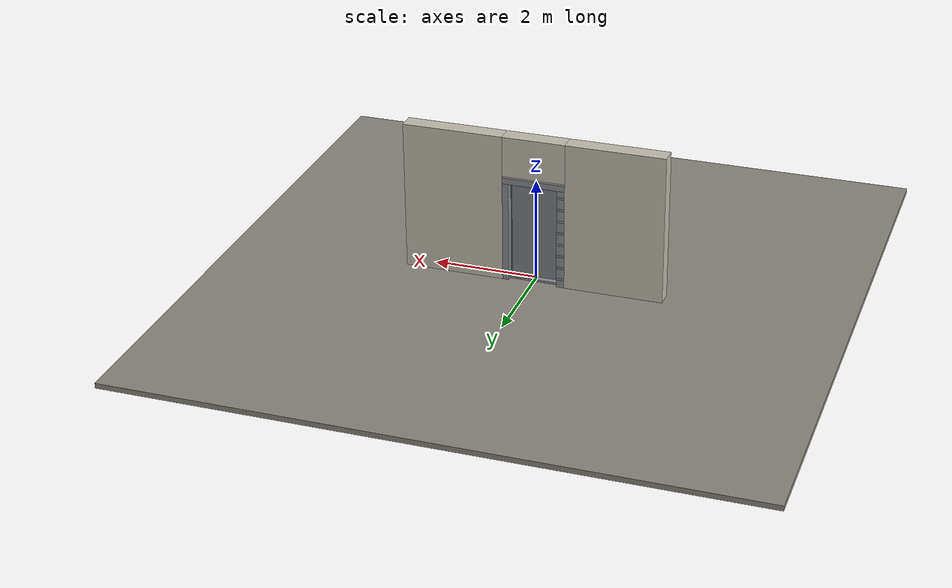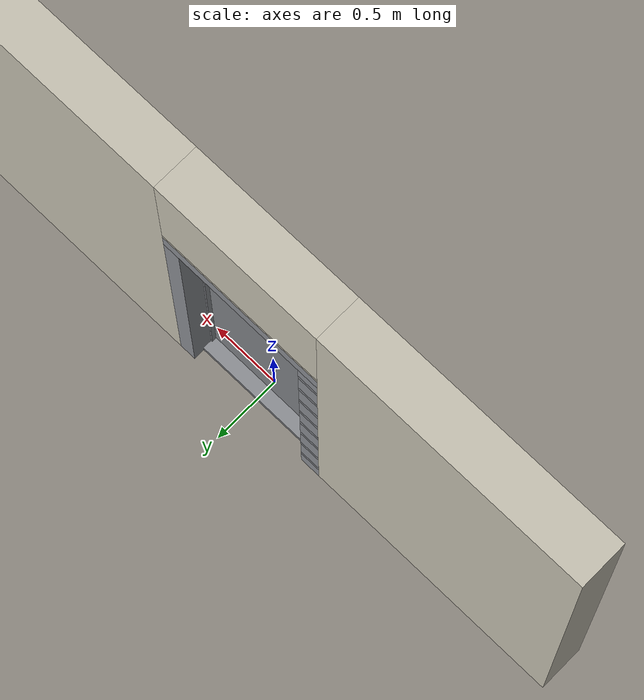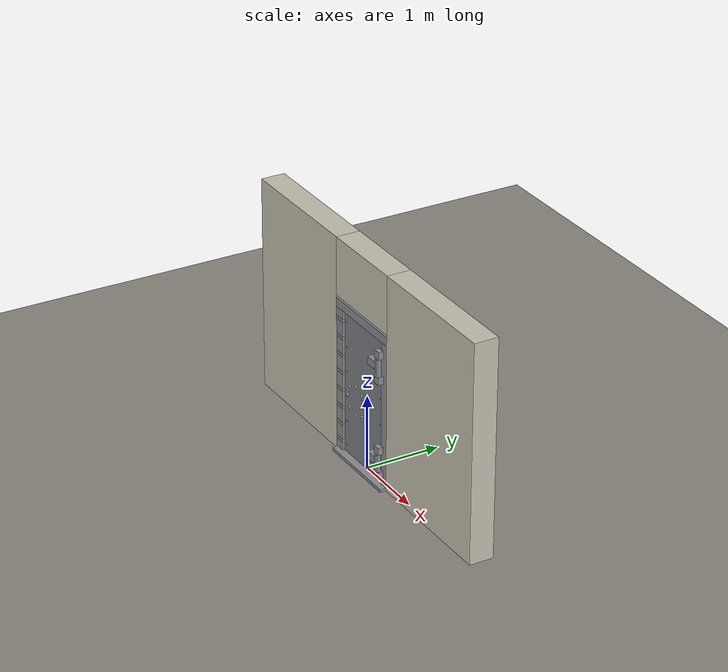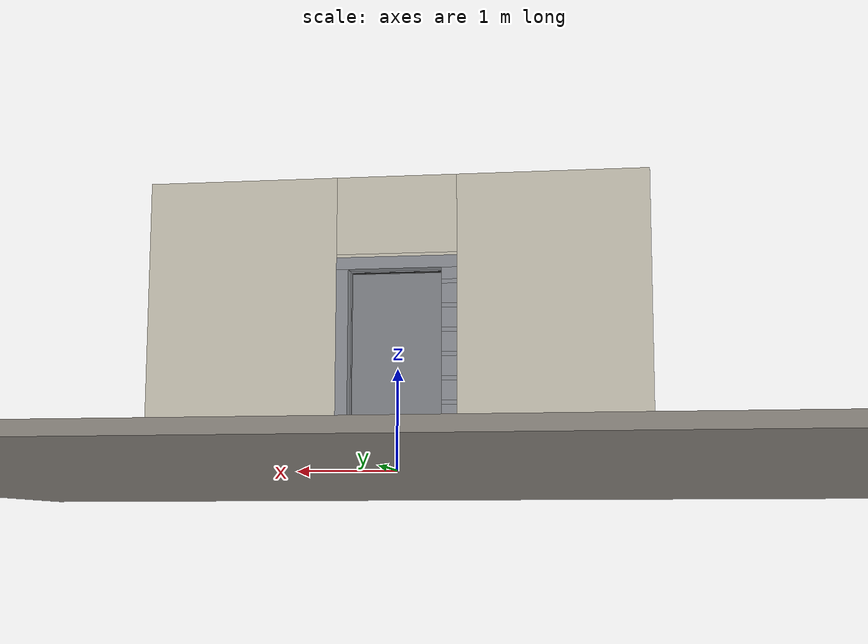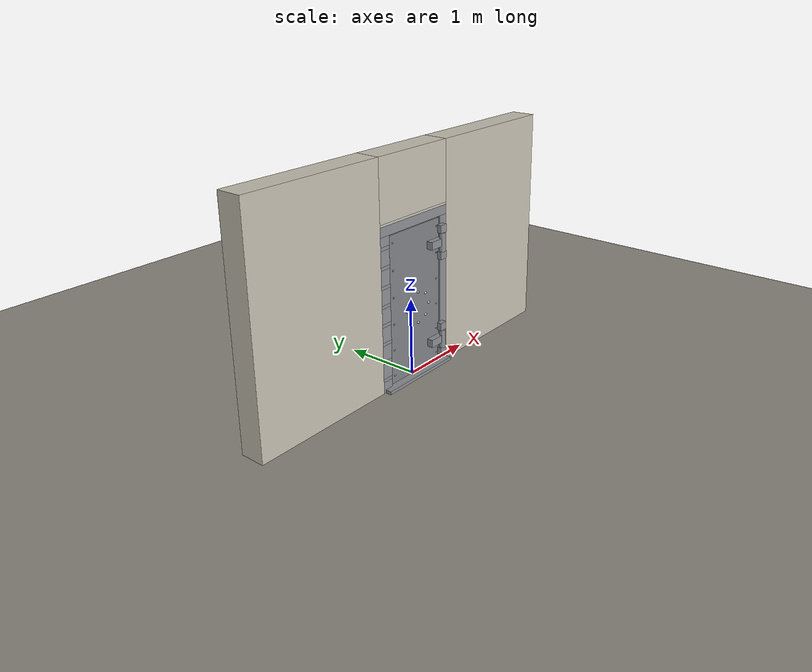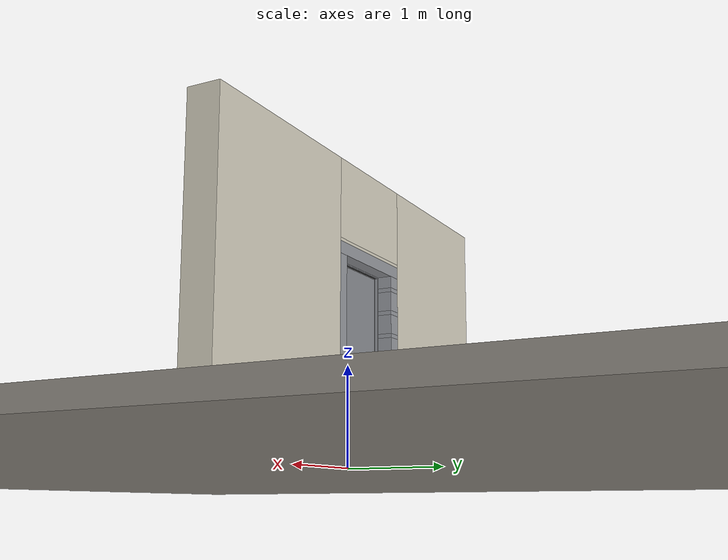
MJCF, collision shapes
<?xml version="1.0" ?>
<mujoco model="db0352_blast_full">
  <compiler angle="radian" meshdir="../../hardware" texturedir="../../textures" autolimits="true" inertiafromgeom="false"/>
  <option timestep="0.002" integrator="implicitfast" cone="elliptic" impratio="10" noslip_iterations="3">
    <flag multiccd="enable"/>
  </option>
  <size memory="16M"/>
  <default>
    <geom condim="4" solref="0.005 1" solimp="0.95 0.99 0.001"/>
    <joint solreflimit="0.005 1" solimplimit="0.95 0.99 0.001"/>
    <tendon solreflimit="0.005 1"/>
    <equality solref="0.002 1"/>
  </default>
  <visual>
    <headlight ambient="0.4 0.4 0.4" diffuse="0.7 0.7 0.7" specular="0.2 0.2 0.2"/>
    <quality shadowsize="4096"/>
    <map znear="0.01" zfar="60"/>
  </visual>
  <asset>
    <mesh name="wheel_3a0bfbe305" file="wheel_3a0bfbe305.obj"/>
    <material name="mat_floor" rgba="0.55 0.53 0.5 1" specular="0.2" shininess="0.15" reflectance="0"/>
    <material name="mat_wall" rgba="0.78 0.76 0.7 1" specular="0.2" shininess="0.1" reflectance="0"/>
    <material name="mat_leaf" rgba="0.5 0.51 0.53 1" specular="0.23" shininess="0.48" reflectance="0.02"/>
    <material name="mat_rivet" rgba="0.55 0.56 0.58 1" specular="0.8" shininess="0.55" reflectance="0.4"/>
    <material name="mat_op_stainless" rgba="0.75 0.76 0.77 1" specular="0.8" shininess="0.65" reflectance="0.4"/>
    <material name="mat_trim" rgba="0.85 0.66 0.3 1" specular="0.8" shininess="0.75" reflectance="0.4"/>
    <material name="mat_vault_bolt" rgba="0.75 0.76 0.77 1" specular="0.8" shininess="0.65" reflectance="0.4"/>
    <material name="mat_frame" rgba="0.55 0.56 0.58 1" specular="0.8" shininess="0.55" reflectance="0.4"/>
    <material name="mat_seal" rgba="0.1 0.1 0.1 1" specular="0.2" shininess="0.1" reflectance="0"/>
    <material name="mat_hinge" rgba="0.55 0.56 0.58 1" specular="0.8" shininess="0.55" reflectance="0.4"/>
    <texture name="skybox" type="skybox" builtin="gradient" rgb1="0.6 0.7 0.85" rgb2="0.9 0.92 0.95" width="256" height="256"/>
  </asset>
  <worldbody>
    <light name="sun" pos="1.5 -2.5 4" dir="-0.3 0.5 -0.8" directional="true" diffuse="0.8 0.8 0.8" specular="0.3 0.3 0.3" castshadow="true"/>
    <light name="fill" pos="-1.5 2.5 3" dir="0.3 -0.5 -0.7" directional="true" diffuse="0.35 0.35 0.4" castshadow="false"/>
    <camera name="robot_view" pos="0 -2.391875 1.677125" xyaxes="1 0 0 0 0.26963 0.962964" fovy="52"/>
    <camera name="far_view" pos="0 2.551875 1.677125" xyaxes="-1 0 0 0 -0.26963 0.962964" fovy="52"/>
    <camera name="iso" pos="-1.878625 -1.996375 2.072625" xyaxes="0.741536 -0.670913 0 0.242917 0.268487 0.932151" fovy="46"/>
    <camera name="detail_handle" pos="0.143 -0.94 1.43" xyaxes="0.97561 0.219512 0 -0.070934 0.315262 0.94635" fovy="38"/>
    <geom name="floor" type="box" size="6 6 0.05" pos="0 0 -0.05" material="mat_floor" group="0" contype="1" conaffinity="1" friction="0.8 0.005 0.0001" density="2400"/>
    <geom name="wall_left" type="box" size="0.943 0.16 1.45" pos="-1.557 0.08 1.45" material="mat_wall" group="0" contype="1" conaffinity="1" friction="0.6 0.005 0.0001" density="800"/>
    <geom name="wall_right" type="box" size="0.958 0.16 1.45" pos="1.542 0.08 1.45" material="mat_wall" group="0" contype="1" conaffinity="1" friction="0.6 0.005 0.0001" density="800"/>
    <geom name="wall_header" type="box" size="0.599 0.16 0.39" pos="-0.015 0.08 2.51" material="mat_wall" group="0" contype="1" conaffinity="1" friction="0.6 0.005 0.0001" density="800"/>
    <geom name="jamb_hinge" type="box" size="0.06 0.16 0.985" pos="0.524 0.08 0.985" material="mat_frame" group="0" contype="1" conaffinity="1" friction="0.6 0.005 0.0001" density="300"/>
    <geom name="strike_169_wall_n" type="box" size="0.075 0.111 0.021" pos="-0.539 0.129 0.16875" material="mat_frame" group="0" contype="1" conaffinity="1" friction="0.6 0.005 0.0001" density="300"/>
    <geom name="strike_169_wall_p" type="box" size="0.075 0.031 0.021" pos="-0.539 -0.049 0.16875" material="mat_frame" group="0" contype="1" conaffinity="1" friction="0.6 0.005 0.0001" density="300"/>
    <geom name="strike_169_back" type="box" size="0.038 0.018 0.021" pos="-0.576 0 0.16875" material="mat_frame" group="0" contype="1" conaffinity="1" friction="0.6 0.005 0.0001" density="300"/>
    <geom name="strike_406_wall_n" type="box" size="0.075 0.111 0.021" pos="-0.539 0.129 0.40625" material="mat_frame" group="0" contype="1" conaffinity="1" friction="0.6 0.005 0.0001" density="300"/>
    <geom name="strike_406_wall_p" type="box" size="0.075 0.031 0.021" pos="-0.539 -0.049 0.40625" material="mat_frame" group="0" contype="1" conaffinity="1" friction="0.6 0.005 0.0001" density="300"/>
    <geom name="strike_406_back" type="box" size="0.038 0.018 0.021" pos="-0.576 0 0.40625" material="mat_frame" group="0" contype="1" conaffinity="1" friction="0.6 0.005 0.0001" density="300"/>
    <geom name="strike_644_wall_n" type="box" size="0.075 0.111 0.021" pos="-0.539 0.129 0.64375" material="mat_frame" group="0" contype="1" conaffinity="1" friction="0.6 0.005 0.0001" density="300"/>
    <geom name="strike_644_wall_p" type="box" size="0.075 0.031 0.021" pos="-0.539 -0.049 0.64375" material="mat_frame" group="0" contype="1" conaffinity="1" friction="0.6 0.005 0.0001" density="300"/>
    <geom name="strike_644_back" type="box" size="0.038 0.018 0.021" pos="-0.576 0 0.64375" material="mat_frame" group="0" contype="1" conaffinity="1" friction="0.6 0.005 0.0001" density="300"/>
    <geom name="strike_881_wall_n" type="box" size="0.075 0.111 0.021" pos="-0.539 0.129 0.88125" material="mat_frame" group="0" contype="1" conaffinity="1" friction="0.6 0.005 0.0001" density="300"/>
    <geom name="strike_881_wall_p" type="box" size="0.075 0.031 0.021" pos="-0.539 -0.049 0.88125" material="mat_frame" group="0" contype="1" conaffinity="1" friction="0.6 0.005 0.0001" density="300"/>
    <geom name="strike_881_back" type="box" size="0.038 0.018 0.021" pos="-0.576 0 0.88125" material="mat_frame" group="0" contype="1" conaffinity="1" friction="0.6 0.005 0.0001" density="300"/>
    <geom name="strike_1119_wall_n" type="box" size="0.075 0.111 0.021" pos="-0.539 0.129 1.11875" material="mat_frame" group="0" contype="1" conaffinity="1" friction="0.6 0.005 0.0001" density="300"/>
    <geom name="strike_1119_wall_p" type="box" size="0.075 0.031 0.021" pos="-0.539 -0.049 1.11875" material="mat_frame" group="0" contype="1" conaffinity="1" friction="0.6 0.005 0.0001" density="300"/>
    <geom name="strike_1119_back" type="box" size="0.038 0.018 0.021" pos="-0.576 0 1.11875" material="mat_frame" group="0" contype="1" conaffinity="1" friction="0.6 0.005 0.0001" density="300"/>
    <geom name="strike_1356_wall_n" type="box" size="0.075 0.111 0.021" pos="-0.539 0.129 1.35625" material="mat_frame" group="0" contype="1" conaffinity="1" friction="0.6 0.005 0.0001" density="300"/>
    <geom name="strike_1356_wall_p" type="box" size="0.075 0.031 0.021" pos="-0.539 -0.049 1.35625" material="mat_frame" group="0" contype="1" conaffinity="1" friction="0.6 0.005 0.0001" density="300"/>
    <geom name="strike_1356_back" type="box" size="0.038 0.018 0.021" pos="-0.576 0 1.35625" material="mat_frame" group="0" contype="1" conaffinity="1" friction="0.6 0.005 0.0001" density="300"/>
    <geom name="strike_1594_wall_n" type="box" size="0.075 0.111 0.021" pos="-0.539 0.129 1.59375" material="mat_frame" group="0" contype="1" conaffinity="1" friction="0.6 0.005 0.0001" density="300"/>
    <geom name="strike_1594_wall_p" type="box" size="0.075 0.031 0.021" pos="-0.539 -0.049 1.59375" material="mat_frame" group="0" contype="1" conaffinity="1" friction="0.6 0.005 0.0001" density="300"/>
    <geom name="strike_1594_back" type="box" size="0.038 0.018 0.021" pos="-0.576 0 1.59375" material="mat_frame" group="0" contype="1" conaffinity="1" friction="0.6 0.005 0.0001" density="300"/>
    <geom name="strike_1831_wall_n" type="box" size="0.075 0.111 0.021" pos="-0.539 0.129 1.83125" material="mat_frame" group="0" contype="1" conaffinity="1" friction="0.6 0.005 0.0001" density="300"/>
    <geom name="strike_1831_wall_p" type="box" size="0.075 0.031 0.021" pos="-0.539 -0.049 1.83125" material="mat_frame" group="0" contype="1" conaffinity="1" friction="0.6 0.005 0.0001" density="300"/>
    <geom name="strike_1831_back" type="box" size="0.038 0.018 0.021" pos="-0.576 0 1.83125" material="mat_frame" group="0" contype="1" conaffinity="1" friction="0.6 0.005 0.0001" density="300"/>
    <geom name="jamb_strike_0" type="box" size="0.075 0.16 0.073875" pos="-0.539 0.08 0.073875" material="mat_frame" group="0" contype="1" conaffinity="1" friction="0.6 0.005 0.0001" density="300"/>
    <geom name="jamb_strike_1" type="box" size="0.075 0.16 0.09775" pos="-0.539 0.08 0.2875" material="mat_frame" group="0" contype="1" conaffinity="1" friction="0.6 0.005 0.0001" density="300"/>
    <geom name="jamb_strike_2" type="box" size="0.075 0.16 0.09775" pos="-0.539 0.08 0.525" material="mat_frame" group="0" contype="1" conaffinity="1" friction="0.6 0.005 0.0001" density="300"/>
    <geom name="jamb_strike_3" type="box" size="0.075 0.16 0.09775" pos="-0.539 0.08 0.7625" material="mat_frame" group="0" contype="1" conaffinity="1" friction="0.6 0.005 0.0001" density="300"/>
    <geom name="jamb_strike_4" type="box" size="0.075 0.16 0.09775" pos="-0.539 0.08 1" material="mat_frame" group="0" contype="1" conaffinity="1" friction="0.6 0.005 0.0001" density="300"/>
    <geom name="jamb_strike_5" type="box" size="0.075 0.16 0.09775" pos="-0.539 0.08 1.2375" material="mat_frame" group="0" contype="1" conaffinity="1" friction="0.6 0.005 0.0001" density="300"/>
    <geom name="jamb_strike_6" type="box" size="0.075 0.16 0.09775" pos="-0.539 0.08 1.475" material="mat_frame" group="0" contype="1" conaffinity="1" friction="0.6 0.005 0.0001" density="300"/>
    <geom name="jamb_strike_7" type="box" size="0.075 0.16 0.09775" pos="-0.539 0.08 1.7125" material="mat_frame" group="0" contype="1" conaffinity="1" friction="0.6 0.005 0.0001" density="300"/>
    <geom name="jamb_strike_8" type="box" size="0.075 0.16 0.058875" pos="-0.539 0.08 1.911125" material="mat_frame" group="0" contype="1" conaffinity="1" friction="0.6 0.005 0.0001" density="300"/>
    <geom name="jamb_head" type="box" size="0.599 0.16 0.06" pos="-0.015 0.08 2.03" material="mat_frame" group="0" contype="1" conaffinity="1" friction="0.6 0.005 0.0001" density="300"/>
    <geom name="head_stud" type="box" size="0.599 0.16 0.015" pos="-0.015 0.08 2.105" material="mat_wall" group="0" contype="1" conaffinity="1" friction="0.6 0.005 0.0001" density="500"/>
    <geom name="stop_hinge" type="box" size="0.0055 0.016 0.985" pos="0.4585 0.0765 0.985" material="mat_frame" group="0" contype="1" conaffinity="1" friction="0.6 0.005 0.0001" density="300"/>
    <geom name="stop_strike" type="box" size="0.0055 0.016 0.985" pos="-0.4585 0.0765 0.985" material="mat_frame" group="0" contype="1" conaffinity="1" friction="0.6 0.005 0.0001" density="300"/>
    <geom name="stop_head" type="box" size="0.464 0.016 0.0055" pos="0 0.0765 1.9645" material="mat_frame" group="0" contype="1" conaffinity="1" friction="0.6 0.005 0.0001" density="300"/>
    <geom name="seal_hinge" type="box" size="0.004 0.006 0.985" pos="0.461 0.066 0.985" material="mat_seal" group="1" contype="0" conaffinity="0" density="1100"/>
    <geom name="seal_strike" type="box" size="0.004 0.006 0.985" pos="-0.461 0.066 0.985" material="mat_seal" group="1" contype="0" conaffinity="0" density="1100"/>
    <geom name="seal_head" type="box" size="0.444 0.006 0.008" pos="0 0.066 1.958" material="mat_seal" group="1" contype="0" conaffinity="0" density="1100"/>
    <geom name="sill_step" type="box" size="0.584 0.16 0.02" pos="0 0 0.02" material="mat_frame" group="0" contype="1" conaffinity="1" friction="0.6 0.005 0.0001" density="7850"/>
    <geom name="hinge_0_bracket_b" type="box" size="0.05 0.0325 0.05" pos="0.458 -0.1125 0.18" material="mat_hinge" group="1" contype="0" conaffinity="0" density="7850"/>
    <geom name="hinge_0_bracket_t" type="box" size="0.05 0.0325 0.05" pos="0.458 -0.1125 0.52" material="mat_hinge" group="1" contype="0" conaffinity="0" density="7850"/>
    <geom name="hinge_1_bracket_b" type="box" size="0.05 0.0325 0.05" pos="0.458 -0.1125 1.48" material="mat_hinge" group="1" contype="0" conaffinity="0" density="7850"/>
    <geom name="hinge_1_bracket_t" type="box" size="0.05 0.0325 0.05" pos="0.458 -0.1125 1.82" material="mat_hinge" group="1" contype="0" conaffinity="0" density="7850"/>
    <site name="approach_point" pos="0 -1.5 0" quat="1 0 0 0" size="0.05" rgba="0.2 0.9 0.2 0.5" group="4"/>
    <site name="goal_point" pos="0 1.5 0" quat="1 0 0 0" size="0.05" rgba="0.2 0.9 0.2 0.5" group="4"/>
    <site name="door_plane_center" pos="0 0 0.985" quat="1 0 0 0" size="0.02" rgba="0.2 0.9 0.2 0.5" group="4"/>
    <body name="leaf" pos="0.464 0 0">
      <inertial pos="-0.435018 -0.006056 1" mass="847.954821" quat="0.507854 0.49202 -0.507854 0.49202" diaginertia="62.426197405 262.320682096 321.820198651"/>
      <joint name="leaf_hinge" type="hinge" axis="0 0 1" pos="-0.006 -0.125 0" limited="true" range="0 1.745329" solreflimit="0.02 1" damping="0.275134" frictionloss="19.181621" armature="0.5"/>
      <geom name="leaf_slab" type="box" size="0.45 0.06 0.95" pos="-0.456 0 1" material="mat_leaf" group="0" contype="1" conaffinity="1" friction="0.45 0.005 0.0001" density="1"/>
      <geom name="leaf_rivet_0_0" type="sphere" size="0.012" pos="-0.056 -0.06 0.15" material="mat_rivet" group="2" contype="0" conaffinity="0" density="7850"/>
      <geom name="leaf_rivet_0_1" type="sphere" size="0.012" pos="-0.856 -0.06 0.15" material="mat_rivet" group="2" contype="0" conaffinity="0" density="7850"/>
      <geom name="leaf_rivet_1_0" type="sphere" size="0.012" pos="-0.056 -0.06 0.49" material="mat_rivet" group="2" contype="0" conaffinity="0" density="7850"/>
      <geom name="leaf_rivet_1_1" type="sphere" size="0.012" pos="-0.856 -0.06 0.49" material="mat_rivet" group="2" contype="0" conaffinity="0" density="7850"/>
      <geom name="leaf_rivet_2_0" type="sphere" size="0.012" pos="-0.056 -0.06 0.83" material="mat_rivet" group="2" contype="0" conaffinity="0" density="7850"/>
      <geom name="leaf_rivet_2_1" type="sphere" size="0.012" pos="-0.856 -0.06 0.83" material="mat_rivet" group="2" contype="0" conaffinity="0" density="7850"/>
      <geom name="leaf_rivet_3_0" type="sphere" size="0.012" pos="-0.056 -0.06 1.17" material="mat_rivet" group="2" contype="0" conaffinity="0" density="7850"/>
      <geom name="leaf_rivet_3_1" type="sphere" size="0.012" pos="-0.856 -0.06 1.17" material="mat_rivet" group="2" contype="0" conaffinity="0" density="7850"/>
      <geom name="leaf_rivet_4_0" type="sphere" size="0.012" pos="-0.056 -0.06 1.51" material="mat_rivet" group="2" contype="0" conaffinity="0" density="7850"/>
      <geom name="leaf_rivet_4_1" type="sphere" size="0.012" pos="-0.856 -0.06 1.51" material="mat_rivet" group="2" contype="0" conaffinity="0" density="7850"/>
      <geom name="leaf_rivet_5_0" type="sphere" size="0.012" pos="-0.056 -0.06 1.85" material="mat_rivet" group="2" contype="0" conaffinity="0" density="7850"/>
      <geom name="leaf_rivet_5_1" type="sphere" size="0.012" pos="-0.856 -0.06 1.85" material="mat_rivet" group="2" contype="0" conaffinity="0" density="7850"/>
      <geom name="hinge_0" type="cylinder" size="0.04 0.12" pos="-0.006 -0.125 0.35" material="mat_hinge" group="1" contype="0" conaffinity="0" density="7850"/>
      <geom name="hinge_0_arm" type="box" size="0.11 0.04 0.05" pos="-0.116 -0.1 0.35" material="mat_hinge" group="1" contype="0" conaffinity="0" density="7850"/>
      <geom name="hinge_1" type="cylinder" size="0.04 0.12" pos="-0.006 -0.125 1.65" material="mat_hinge" group="1" contype="0" conaffinity="0" density="7850"/>
      <geom name="hinge_1_arm" type="box" size="0.11 0.04 0.05" pos="-0.116 -0.1 1.65" material="mat_hinge" group="1" contype="0" conaffinity="0" density="7850"/>
      <body name="wheel" pos="-0.501 0 0.95">
        <inertial pos="0 -0.131566 0" mass="3.901418" quat="0.707107 -0.707107 0 0" diaginertia="0.063106112 0.063106112 0.115746944"/>
        <joint name="wheel_hinge" type="hinge" axis="0 1 0" limited="true" range="0 6.2832" damping="0.5" frictionloss="5" armature="0.01"/>
        <geom name="wheel_spindle" type="cylinder" size="0.006 0.068" pos="0 0 0" quat="0.707107 -0.707107 0 0" material="mat_op_stainless" group="1" contype="0" conaffinity="0" density="7850"/>
        <geom name="wheel_wheel_n" type="mesh" mesh="wheel_3a0bfbe305" pos="0 -0.06 0" quat="0 0 -0.707107 0.707107" material="mat_op_stainless" group="1" contype="0" conaffinity="0" density="3000"/>
        <geom name="wheel_wheel_col_0_n" type="sphere" size="0.015" pos="0.2 -0.14 0" material="mat_op_stainless" group="0" contype="1" conaffinity="1" friction="0.6 0.005 0.0001" density="3000"/>
        <geom name="wheel_wheel_col_1_n" type="sphere" size="0.015" pos="0.141421 -0.14 0.141421" material="mat_op_stainless" group="0" contype="1" conaffinity="1" friction="0.6 0.005 0.0001" density="3000"/>
        <geom name="wheel_wheel_col_2_n" type="sphere" size="0.015" pos="0 -0.14 0.2" material="mat_op_stainless" group="0" contype="1" conaffinity="1" friction="0.6 0.005 0.0001" density="3000"/>
        <geom name="wheel_wheel_col_3_n" type="sphere" size="0.015" pos="-0.141421 -0.14 0.141421" material="mat_op_stainless" group="0" contype="1" conaffinity="1" friction="0.6 0.005 0.0001" density="3000"/>
        <geom name="wheel_wheel_col_4_n" type="sphere" size="0.015" pos="-0.2 -0.14 0" material="mat_op_stainless" group="0" contype="1" conaffinity="1" friction="0.6 0.005 0.0001" density="3000"/>
        <geom name="wheel_wheel_col_5_n" type="sphere" size="0.015" pos="-0.141421 -0.14 -0.141421" material="mat_op_stainless" group="0" contype="1" conaffinity="1" friction="0.6 0.005 0.0001" density="3000"/>
        <geom name="wheel_wheel_col_6_n" type="sphere" size="0.015" pos="0 -0.14 -0.2" material="mat_op_stainless" group="0" contype="1" conaffinity="1" friction="0.6 0.005 0.0001" density="3000"/>
        <geom name="wheel_wheel_col_7_n" type="sphere" size="0.015" pos="0.141421 -0.14 -0.141421" material="mat_op_stainless" group="0" contype="1" conaffinity="1" friction="0.6 0.005 0.0001" density="3000"/>
        <site name="wheel_grip_n" pos="0 -0.14 0.2" quat="1 0 0 0" size="0.012" rgba="0.2 0.9 0.2 0.5" group="4"/>
      </body>
      <body name="bolt_0" pos="-0.906 0 0.16875">
        <inertial pos="0.006 0 0" mass="0.867033" quat="0 0 -0.707107 0.707107" diaginertia="0.000107532 0.001428688 0.001428688"/>
        <joint name="bolt_0_slide" type="slide" axis="1 0 0" limited="true" range="0 0.068" damping="20" frictionloss="25" armature="0.1"/>
        <geom name="bolt_0_geom" type="capsule" size="0.016 0.058" pos="0.006 0 0" quat="0.707107 0 -0.707107 0" material="mat_vault_bolt" group="0" contype="1" conaffinity="1" friction="0.6 0.005 0.0001" density="7850"/>
      </body>
      <body name="bolt_1" pos="-0.906 0 0.40625">
        <inertial pos="0.006 0 0" mass="0.867033" quat="0 0 -0.707107 0.707107" diaginertia="0.000107532 0.001428688 0.001428688"/>
        <joint name="bolt_1_slide" type="slide" axis="1 0 0" limited="true" range="0 0.068" damping="20" frictionloss="25" armature="0.1"/>
        <geom name="bolt_1_geom" type="capsule" size="0.016 0.058" pos="0.006 0 0" quat="0.707107 0 -0.707107 0" material="mat_vault_bolt" group="0" contype="1" conaffinity="1" friction="0.6 0.005 0.0001" density="7850"/>
      </body>
      <body name="bolt_2" pos="-0.906 0 0.64375">
        <inertial pos="0.006 0 0" mass="0.867033" quat="0 0 -0.707107 0.707107" diaginertia="0.000107532 0.001428688 0.001428688"/>
        <joint name="bolt_2_slide" type="slide" axis="1 0 0" limited="true" range="0 0.068" damping="20" frictionloss="25" armature="0.1"/>
        <geom name="bolt_2_geom" type="capsule" size="0.016 0.058" pos="0.006 0 0" quat="0.707107 0 -0.707107 0" material="mat_vault_bolt" group="0" contype="1" conaffinity="1" friction="0.6 0.005 0.0001" density="7850"/>
      </body>
      <body name="bolt_3" pos="-0.906 0 0.88125">
        <inertial pos="0.006 0 0" mass="0.867033" quat="0 0 -0.707107 0.707107" diaginertia="0.000107532 0.001428688 0.001428688"/>
        <joint name="bolt_3_slide" type="slide" axis="1 0 0" limited="true" range="0 0.068" damping="20" frictionloss="25" armature="0.1"/>
        <geom name="bolt_3_geom" type="capsule" size="0.016 0.058" pos="0.006 0 0" quat="0.707107 0 -0.707107 0" material="mat_vault_bolt" group="0" contype="1" conaffinity="1" friction="0.6 0.005 0.0001" density="7850"/>
      </body>
      <body name="bolt_4" pos="-0.906 0 1.11875">
        <inertial pos="0.006 0 0" mass="0.867033" quat="0 0 -0.707107 0.707107" diaginertia="0.000107532 0.001428688 0.001428688"/>
        <joint name="bolt_4_slide" type="slide" axis="1 0 0" limited="true" range="0 0.068" damping="20" frictionloss="25" armature="0.1"/>
        <geom name="bolt_4_geom" type="capsule" size="0.016 0.058" pos="0.006 0 0" quat="0.707107 0 -0.707107 0" material="mat_vault_bolt" group="0" contype="1" conaffinity="1" friction="0.6 0.005 0.0001" density="7850"/>
      </body>
      <body name="bolt_5" pos="-0.906 0 1.35625">
        <inertial pos="0.006 0 0" mass="0.867033" quat="0 0 -0.707107 0.707107" diaginertia="0.000107532 0.001428688 0.001428688"/>
        <joint name="bolt_5_slide" type="slide" axis="1 0 0" limited="true" range="0 0.068" damping="20" frictionloss="25" armature="0.1"/>
        <geom name="bolt_5_geom" type="capsule" size="0.016 0.058" pos="0.006 0 0" quat="0.707107 0 -0.707107 0" material="mat_vault_bolt" group="0" contype="1" conaffinity="1" friction="0.6 0.005 0.0001" density="7850"/>
      </body>
      <body name="bolt_6" pos="-0.906 0 1.59375">
        <inertial pos="0.006 0 0" mass="0.867033" quat="0 0 -0.707107 0.707107" diaginertia="0.000107532 0.001428688 0.001428688"/>
        <joint name="bolt_6_slide" type="slide" axis="1 0 0" limited="true" range="0 0.068" damping="20" frictionloss="25" armature="0.1"/>
        <geom name="bolt_6_geom" type="capsule" size="0.016 0.058" pos="0.006 0 0" quat="0.707107 0 -0.707107 0" material="mat_vault_bolt" group="0" contype="1" conaffinity="1" friction="0.6 0.005 0.0001" density="7850"/>
      </body>
      <body name="bolt_7" pos="-0.906 0 1.83125">
        <inertial pos="0.006 0 0" mass="0.867033" quat="0 0 -0.707107 0.707107" diaginertia="0.000107532 0.001428688 0.001428688"/>
        <joint name="bolt_7_slide" type="slide" axis="1 0 0" limited="true" range="0 0.068" damping="20" frictionloss="25" armature="0.1"/>
        <geom name="bolt_7_geom" type="capsule" size="0.016 0.058" pos="0.006 0 0" quat="0.707107 0 -0.707107 0" material="mat_vault_bolt" group="0" contype="1" conaffinity="1" friction="0.6 0.005 0.0001" density="7850"/>
      </body>
    </body>
  </worldbody>
  <equality>
    <joint name="wheel_bolt_0" joint1="bolt_0_slide" joint2="wheel_hinge" polycoef="0 0.010823 0 0 0" active="true"/>
    <joint name="wheel_bolt_1" joint1="bolt_1_slide" joint2="wheel_hinge" polycoef="0 0.010823 0 0 0" active="true"/>
    <joint name="wheel_bolt_2" joint1="bolt_2_slide" joint2="wheel_hinge" polycoef="0 0.010823 0 0 0" active="true"/>
    <joint name="wheel_bolt_3" joint1="bolt_3_slide" joint2="wheel_hinge" polycoef="0 0.010823 0 0 0" active="true"/>
    <joint name="wheel_bolt_4" joint1="bolt_4_slide" joint2="wheel_hinge" polycoef="0 0.010823 0 0 0" active="true"/>
    <joint name="wheel_bolt_5" joint1="bolt_5_slide" joint2="wheel_hinge" polycoef="0 0.010823 0 0 0" active="true"/>
    <joint name="wheel_bolt_6" joint1="bolt_6_slide" joint2="wheel_hinge" polycoef="0 0.010823 0 0 0" active="true"/>
    <joint name="wheel_bolt_7" joint1="bolt_7_slide" joint2="wheel_hinge" polycoef="0 0.010823 0 0 0" active="true"/>
  </equality>
  <sensor>
    <jointpos name="leaf_hinge_pos" joint="leaf_hinge"/>
    <jointvel name="leaf_hinge_vel" joint="leaf_hinge"/>
    <jointpos name="wheel_hinge_pos" joint="wheel_hinge"/>
    <jointvel name="wheel_hinge_vel" joint="wheel_hinge"/>
    <jointpos name="bolt_0_slide_pos" joint="bolt_0_slide"/>
    <jointvel name="bolt_0_slide_vel" joint="bolt_0_slide"/>
    <jointpos name="bolt_1_slide_pos" joint="bolt_1_slide"/>
    <jointvel name="bolt_1_slide_vel" joint="bolt_1_slide"/>
    <jointpos name="bolt_2_slide_pos" joint="bolt_2_slide"/>
    <jointvel name="bolt_2_slide_vel" joint="bolt_2_slide"/>
    <jointpos name="bolt_3_slide_pos" joint="bolt_3_slide"/>
    <jointvel name="bolt_3_slide_vel" joint="bolt_3_slide"/>
    <jointpos name="bolt_4_slide_pos" joint="bolt_4_slide"/>
    <jointvel name="bolt_4_slide_vel" joint="bolt_4_slide"/>
    <jointpos name="bolt_5_slide_pos" joint="bolt_5_slide"/>
    <jointvel name="bolt_5_slide_vel" joint="bolt_5_slide"/>
    <jointpos name="bolt_6_slide_pos" joint="bolt_6_slide"/>
    <jointvel name="bolt_6_slide_vel" joint="bolt_6_slide"/>
    <jointpos name="bolt_7_slide_pos" joint="bolt_7_slide"/>
    <jointvel name="bolt_7_slide_vel" joint="bolt_7_slide"/>
  </sensor>
</mujoco>
